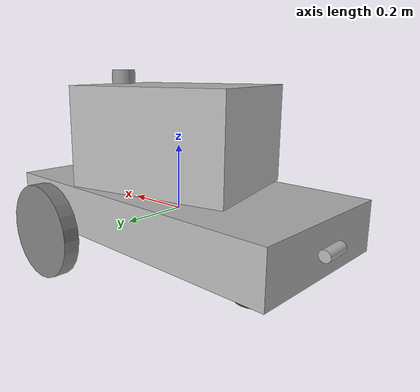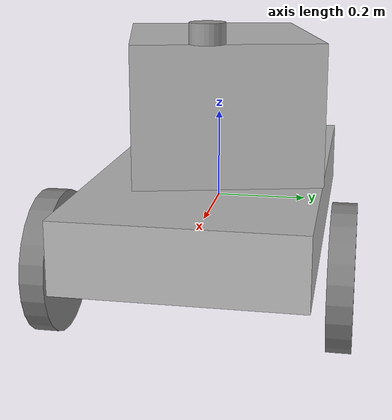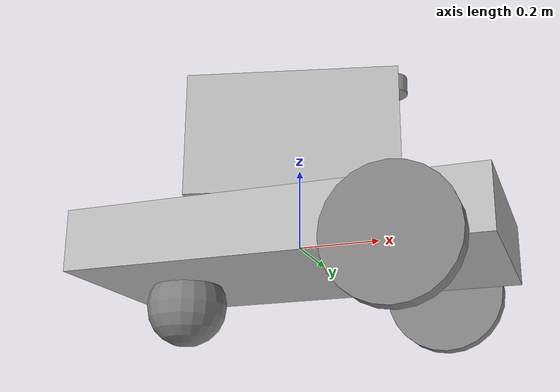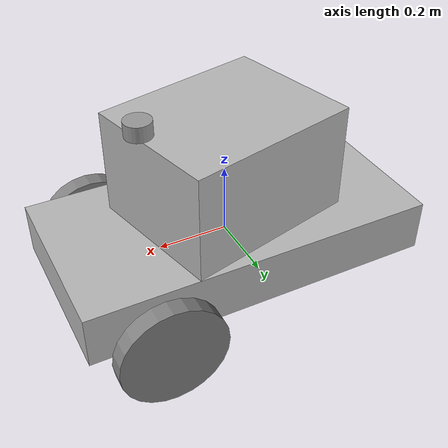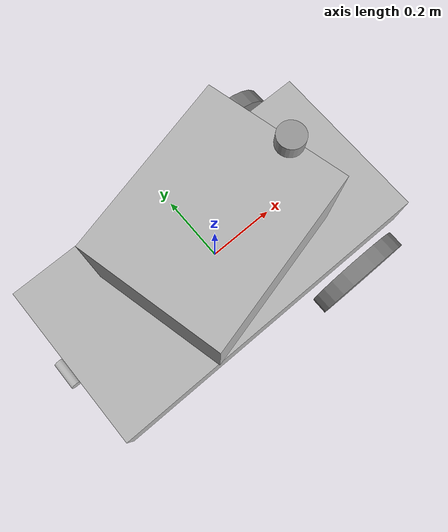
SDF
<?xml version='1.0'?>
<sdf version='1.7'>
  <model name='customized_dolly'>
    <link name='chassis'>
      <inertial>
        <mass>1</mass>
        <inertia>
          <ixx>0.0227</ixx>
          <ixy>0</ixy>
          <ixz>0</ixz>
          <iyy>0.0852</iyy>
          <iyz>0</iyz>
          <izz>0.1041</izz>
        </inertia>
        <pose>0 0 0 0 -0 0</pose>
      </inertial>
      <sensor name='sensor_ray' type='ray'>
        <pose>0.5 0 0 0 -0 0</pose>
        <ray>
          <scan>
            <horizontal>
              <samples>200</samples>
              <resolution>1</resolution>
              <min_angle>-1</min_angle>
              <max_angle>1</max_angle>
            </horizontal>
            <vertical>
              <samples>1</samples>
              <min_angle>0</min_angle>
              <max_angle>0</max_angle>
            </vertical>
          </scan>
          <range>
            <min>0.05</min>
            <max>10</max>
          </range>
        </ray>
        <always_on>1</always_on>
        <visualize>1</visualize>
        <update_rate>100</update_rate>
        <plugin name='laser' filename='libgazebo_ros_ray_sensor.so'>
          <ros>
            <namespace>/dolly</namespace>
            <remapping>~/out:=laser_scan</remapping>
          </ros>
          <output_type>sensor_msgs/LaserScan</output_type>
        </plugin>
      </sensor>
      <self_collide>0</self_collide>
      <enable_wind>0</enable_wind>
      <kinematic>0</kinematic>
      <pose>0 0 0 0 -0 0</pose>
      <visual name='visual'>
        <geometry>
          <box>
            <size>1 0.5 0.15</size>
          </box>
        </geometry>
        <material>
          <script>
            <uri>model://customized_dolly/materials/scripts</uri>
            <uri>model://customized_dolly/materials/textures</uri>
            <name>customized_dolly/iron</name>
          </script>
          <shader type='pixel'/>
        </material>
        <pose>0 0 0 0 -0 0</pose>
        <transparency>0</transparency>
        <cast_shadows>1</cast_shadows>
      </visual>
      <visual name='box'>
        <pose>0 0 0.08 0 -0 0.24</pose>
        <geometry>
          <mesh>
            <uri>model://cardboard_box/meshes/cardboard_box.dae</uri>
            <scale>1.25932 1.00745 0.755591</scale>
          </mesh>
        </geometry>
        <material>
          <shader type='pixel'/>
        </material>
        <transparency>0</transparency>
        <cast_shadows>1</cast_shadows>
      </visual>
    </link>
    <link name='camera_top'>
      <inertial>
        <mass>0.000244108</mass>
        <inertia>
          <ixx>1.2412e-07</ixx>
          <ixy>0</ixy>
          <ixz>0</ixz>
          <iyy>1.2412e-07</iyy>
          <iyz>0</iyz>
          <izz>1.7139e-07</izz>
        </inertia>
        <pose>0 0 1.5 0 -0 0</pose>
      </inertial>
      <pose>0.241018 0.015051 0.401714 -1.5e-05 0.006391 -0.00026</pose>
      <self_collide>0</self_collide>
      <enable_wind>0</enable_wind>
      <kinematic>0</kinematic>
      <visual name='visual'>
        <pose>0 0 0 0 -0 0</pose>
        <geometry>
          <cylinder>
            <radius>0.0374729</radius>
            <length>0.0434617</length>
          </cylinder>
        </geometry>
        <material>
          <lighting>1</lighting>
          <script>
            <uri>file://media/materials/scripts/gazebo.material</uri>
            <name>Gazebo/Grey</name>
          </script>
          <shader type='pixel'/>
        </material>
        <transparency>0</transparency>
        <cast_shadows>1</cast_shadows>
      </visual>
      <collision name='collision'>
        <laser_retro>0</laser_retro>
        <max_contacts>10</max_contacts>
        <pose>0 0 0 0 -0 0</pose>
        <geometry>
          <cylinder>
            <radius>0.037473</radius>
            <length>0.043462</length>
          </cylinder>
        </geometry>
        <surface>
          <friction>
            <ode>
              <mu>1</mu>
              <mu2>1</mu2>
              <fdir1>0 0 0</fdir1>
              <slip1>0</slip1>
              <slip2>0</slip2>
            </ode>
            <torsional>
              <coefficient>1</coefficient>
              <patch_radius>0</patch_radius>
              <surface_radius>0</surface_radius>
              <use_patch_radius>1</use_patch_radius>
              <ode>
                <slip>0</slip>
              </ode>
            </torsional>
          </friction>
          <bounce>
            <restitution_coefficient>0</restitution_coefficient>
            <threshold>1e+06</threshold>
          </bounce>
          <contact>
            <collide_without_contact>0</collide_without_contact>
            <collide_without_contact_bitmask>1</collide_without_contact_bitmask>
            <collide_bitmask>1</collide_bitmask>
            <ode>
              <soft_cfm>0</soft_cfm>
              <soft_erp>0.2</soft_erp>
              <kp>1e+13</kp>
              <kd>1</kd>
              <max_vel>0.01</max_vel>
              <min_depth>0</min_depth>
            </ode>
            <bullet>
              <split_impulse>1</split_impulse>
              <split_impulse_penetration_threshold>-0.01</split_impulse_penetration_threshold>
              <soft_cfm>0</soft_cfm>
              <soft_erp>0.2</soft_erp>
              <kp>1e+13</kp>
              <kd>1</kd>
            </bullet>
          </contact>
        </surface>
      </collision>
      <sensor name='camera0' type='camera'>
        <always_on>true</always_on>
        <update_rate>30</update_rate>
        <visualize>1</visualize>
        <camera name='head'>
          <horizontal_fov>1.39626</horizontal_fov>
          <image>
            <width>640</width>
            <height>480</height>
            <format>R8G8B8</format>
          </image>
          <clip>
            <near>0.02</near>
            <far>300</far>
          </clip>
          <noise>
            <type>gaussian</type>
            <mean>0</mean>
            <stddev>0.007</stddev>
          </noise>
        </camera>
        <plugin name='camera_controller' filename='libgazebo_ros_camera.so'>
          <ros>
            <remapping>image_raw:=image_raw</remapping>
            <remapping>camera_info:=camera_info_demo</remapping>
          </ros>
        </plugin>
      </sensor>
    </link>
    <link name='caster'>
      <pose>-0.3 0 -0.125 0 -0 0</pose>
      <inertial>
        <mass>0.0415553</mass>
        <inertia>
          <ixx>7.97741e-05</ixx>
          <ixy>0</ixy>
          <ixz>0</ixz>
          <iyy>7.97741e-05</iyy>
          <iyz>0</iyz>
          <izz>7.97741e-05</izz>
        </inertia>
        <pose>0 0 0 0 -0 0</pose>
      </inertial>
      <self_collide>0</self_collide>
      <enable_wind>0</enable_wind>
      <kinematic>0</kinematic>
      <visual name='visual'>
        <geometry>
          <sphere>
            <radius>0.1</radius>
          </sphere>
        </geometry>
        <material>
          <diffuse>0.5 0.5 0.5 1</diffuse>
          <ambient>0 0 0 1</ambient>
          <specular>1 1 1 1</specular>
          <emissive>0 0 0 1</emissive>
          <shader type='pixel'/>
          <script>
            <name>ModelPreview_2::caster::visual_MATERIAL_</name>
            <uri>__default__</uri>
          </script>
        </material>
        <pose>0 0 0 0 -0 0</pose>
        <transparency>0</transparency>
        <cast_shadows>1</cast_shadows>
      </visual>
      <collision name='collision'>
        <laser_retro>0</laser_retro>
        <max_contacts>10</max_contacts>
        <pose>0 0 0 0 -0 0</pose>
        <geometry>
          <sphere>
            <radius>0.1</radius>
          </sphere>
        </geometry>
        <surface>
          <friction>
            <ode>
              <mu>1</mu>
              <mu2>1</mu2>
              <fdir1>0 0 0</fdir1>
              <slip1>0</slip1>
              <slip2>0</slip2>
            </ode>
            <torsional>
              <coefficient>1</coefficient>
              <patch_radius>0</patch_radius>
              <surface_radius>0</surface_radius>
              <use_patch_radius>1</use_patch_radius>
              <ode>
                <slip>0</slip>
              </ode>
            </torsional>
          </friction>
          <bounce>
            <restitution_coefficient>0</restitution_coefficient>
            <threshold>1e+06</threshold>
          </bounce>
          <contact>
            <collide_without_contact>0</collide_without_contact>
            <collide_without_contact_bitmask>1</collide_without_contact_bitmask>
            <collide_bitmask>1</collide_bitmask>
            <ode>
              <soft_cfm>0</soft_cfm>
              <soft_erp>0.2</soft_erp>
              <kp>1e+13</kp>
              <kd>1</kd>
              <max_vel>0.01</max_vel>
              <min_depth>0</min_depth>
            </ode>
            <bullet>
              <split_impulse>1</split_impulse>
              <split_impulse_penetration_threshold>-0.01</split_impulse_penetration_threshold>
              <soft_cfm>0</soft_cfm>
              <soft_erp>0.2</soft_erp>
              <kp>1e+13</kp>
              <kd>1</kd>
            </bullet>
          </contact>
        </surface>
      </collision>
    </link>
    <link name='left_wheel'>
      <pose>0.3 0.3 -0.075 -1.5707 -0 -0</pose>
      <inertial>
        <mass>0.5</mass>
        <inertia>
          <ixx>0.0029</ixx>
          <ixy>0</ixy>
          <ixz>0</ixz>
          <iyy>0.0029</iyy>
          <iyz>0</iyz>
          <izz>0.0056</izz>
        </inertia>
        <pose>0 0 0 0 -0 0</pose>
      </inertial>
      <self_collide>0</self_collide>
      <enable_wind>0</enable_wind>
      <kinematic>0</kinematic>
      <visual name='visual'>
        <geometry>
          <cylinder>
            <radius>0.15</radius>
            <length>0.05</length>
          </cylinder>
        </geometry>
        <material>
          <diffuse>0.5 0.5 0.5 1</diffuse>
          <ambient>0 0 0 1</ambient>
          <specular>1 1 1 1</specular>
          <emissive>0 0 0 1</emissive>
          <shader type='pixel'/>
          <script>
            <name>ModelPreview_2::left_wheel::visual_MATERIAL_</name>
            <uri>__default__</uri>
          </script>
        </material>
        <pose>0 0 0 0 -0 0</pose>
        <transparency>0</transparency>
        <cast_shadows>1</cast_shadows>
      </visual>
      <collision name='collision'>
        <laser_retro>0</laser_retro>
        <max_contacts>10</max_contacts>
        <pose>0 0 0 0 -0 0</pose>
        <geometry>
          <sphere>
            <radius>0.15</radius>
          </sphere>
        </geometry>
        <surface>
          <friction>
            <ode>
              <mu>1</mu>
              <mu2>1</mu2>
              <fdir1>0 0 0</fdir1>
              <slip1>0</slip1>
              <slip2>0</slip2>
            </ode>
            <torsional>
              <coefficient>1</coefficient>
              <patch_radius>0</patch_radius>
              <surface_radius>0</surface_radius>
              <use_patch_radius>1</use_patch_radius>
              <ode>
                <slip>0</slip>
              </ode>
            </torsional>
          </friction>
          <bounce>
            <restitution_coefficient>0</restitution_coefficient>
            <threshold>1e+06</threshold>
          </bounce>
          <contact>
            <collide_without_contact>0</collide_without_contact>
            <collide_without_contact_bitmask>1</collide_without_contact_bitmask>
            <collide_bitmask>1</collide_bitmask>
            <ode>
              <soft_cfm>0</soft_cfm>
              <soft_erp>0.2</soft_erp>
              <kp>1e+13</kp>
              <kd>1</kd>
              <max_vel>0.01</max_vel>
              <min_depth>0.01</min_depth>
            </ode>
            <bullet>
              <split_impulse>1</split_impulse>
              <split_impulse_penetration_threshold>-0.01</split_impulse_penetration_threshold>
              <soft_cfm>0</soft_cfm>
              <soft_erp>0.2</soft_erp>
              <kp>1e+13</kp>
              <kd>1</kd>
            </bullet>
          </contact>
        </surface>
      </collision>
    </link>
    <link name='right_wheel'>
      <pose>0.3 -0.3 -0.075 -1.5707 -0 -0</pose>
      <inertial>
        <mass>0.5</mass>
        <inertia>
          <ixx>0.0029</ixx>
          <ixy>0</ixy>
          <ixz>0</ixz>
          <iyy>0.0029</iyy>
          <iyz>0</iyz>
          <izz>0.0056</izz>
        </inertia>
        <pose>0 0 0 0 -0 0</pose>
      </inertial>
      <self_collide>0</self_collide>
      <enable_wind>0</enable_wind>
      <kinematic>0</kinematic>
      <visual name='visual'>
        <geometry>
          <cylinder>
            <radius>0.15</radius>
            <length>0.05</length>
          </cylinder>
        </geometry>
        <material>
          <diffuse>0.5 0.5 0.5 1</diffuse>
          <ambient>0 0 0 1</ambient>
          <specular>1 1 1 1</specular>
          <emissive>0 0 0 1</emissive>
          <shader type='pixel'/>
          <script>
            <name>ModelPreview_2::right_wheel::visual_MATERIAL_</name>
            <uri>__default__</uri>
          </script>
        </material>
        <pose>0 0 0 0 -0 0</pose>
        <transparency>0</transparency>
        <cast_shadows>1</cast_shadows>
      </visual>
      <collision name='collision'>
        <laser_retro>0</laser_retro>
        <max_contacts>10</max_contacts>
        <pose>0 0 0 0 -0 0</pose>
        <geometry>
          <sphere>
            <radius>0.15</radius>
          </sphere>
        </geometry>
        <surface>
          <friction>
            <ode>
              <mu>1</mu>
              <mu2>1</mu2>
              <fdir1>0 0 0</fdir1>
              <slip1>0</slip1>
              <slip2>0</slip2>
            </ode>
            <torsional>
              <coefficient>1</coefficient>
              <patch_radius>0</patch_radius>
              <surface_radius>0</surface_radius>
              <use_patch_radius>1</use_patch_radius>
              <ode>
                <slip>0</slip>
              </ode>
            </torsional>
          </friction>
          <bounce>
            <restitution_coefficient>0</restitution_coefficient>
            <threshold>1e+06</threshold>
          </bounce>
          <contact>
            <collide_without_contact>0</collide_without_contact>
            <collide_without_contact_bitmask>1</collide_without_contact_bitmask>
            <collide_bitmask>1</collide_bitmask>
            <ode>
              <soft_cfm>0</soft_cfm>
              <soft_erp>0.2</soft_erp>
              <kp>1e+13</kp>
              <kd>1</kd>
              <max_vel>0.01</max_vel>
              <min_depth>0.01</min_depth>
            </ode>
            <bullet>
              <split_impulse>1</split_impulse>
              <split_impulse_penetration_threshold>-0.01</split_impulse_penetration_threshold>
              <soft_cfm>0</soft_cfm>
              <soft_erp>0.2</soft_erp>
              <kp>1e+13</kp>
              <kd>1</kd>
            </bullet>
          </contact>
        </surface>
      </collision>
    </link>
    <link name='tail'>
      <pose>-0.52 -0 -0 -1.6 0 0</pose>
      <inertial>
        <mass>0.0254232</mass>
        <inertia>
          <ixx>1.528e-05</ixx>
          <ixy>0</ixy>
          <ixz>0</ixz>
          <iyy>1.528e-05</iyy>
          <iyz>0</iyz>
          <izz>3.45e-06</izz>
        </inertia>
        <pose>0 0 -0.04 0 -0 0</pose>
      </inertial>
      <self_collide>0</self_collide>
      <enable_wind>0</enable_wind>
      <kinematic>0</kinematic>
      <visual name='visual'>
        <geometry>
          <cylinder>
            <radius>0.016468</radius>
            <length>0.08</length>
          </cylinder>
        </geometry>
        <material>
          <script>
            <uri>model://customized_dolly/materials/scripts</uri>
            <uri>model://customized_dolly/materials/textures</uri>
            <name>customized_dolly/iron</name>
          </script>
          <shader type='pixel'/>
        </material>
        <pose>0 0 0 0 -0 0</pose>
        <transparency>0</transparency>
        <cast_shadows>1</cast_shadows>
      </visual>
    </link>
    <joint name='camera_joint' type='fixed'>
      <parent>chassis</parent>
      <child>camera_top</child>
      <pose>0 0 0 0 -0 0</pose>
      <physics>
        <ode>
          <limit>
            <cfm>0</cfm>
            <erp>0.2</erp>
          </limit>
          <suspension>
            <cfm>0</cfm>
            <erp>0.2</erp>
          </suspension>
        </ode>
      </physics>
    </joint>
    <joint name='caster_wheel' type='ball'>
      <parent>chassis</parent>
      <child>caster</child>
      <pose>0 0 0 0 -0 0</pose>
      <physics>
        <ode>
          <limit>
            <cfm>0</cfm>
            <erp>0.2</erp>
          </limit>
          <suspension>
            <cfm>0</cfm>
            <erp>0.2</erp>
          </suspension>
        </ode>
      </physics>
    </joint>
    <joint name='left_wheel_joint' type='revolute'>
      <parent>chassis</parent>
      <child>left_wheel</child>
      <pose>0 0 0 0 -0 0</pose>
      <axis>
        <xyz>0 0 1</xyz>
        <limit>
          <lower>-1.79769e+308</lower>
          <upper>1.79769e+308</upper>
          <effort>-1</effort>
          <velocity>-1</velocity>
        </limit>
        <dynamics>
          <spring_reference>0</spring_reference>
          <spring_stiffness>0</spring_stiffness>
          <damping>0</damping>
          <friction>0</friction>
        </dynamics>
      </axis>
      <physics>
        <ode>
          <limit>
            <cfm>0</cfm>
            <erp>0.2</erp>
          </limit>
          <suspension>
            <cfm>0</cfm>
            <erp>0.2</erp>
          </suspension>
        </ode>
      </physics>
    </joint>
    <joint name='right_wheel_joint' type='revolute'>
      <parent>chassis</parent>
      <child>right_wheel</child>
      <pose>0 0 0 0 -0 0</pose>
      <axis>
        <xyz>0 0 1</xyz>
        <limit>
          <lower>-1.79769e+308</lower>
          <upper>1.79769e+308</upper>
          <effort>-1</effort>
          <velocity>-1</velocity>
        </limit>
        <dynamics>
          <spring_reference>0</spring_reference>
          <spring_stiffness>0</spring_stiffness>
          <damping>0</damping>
          <friction>0</friction>
        </dynamics>
      </axis>
      <physics>
        <ode>
          <limit>
            <cfm>0</cfm>
            <erp>0.2</erp>
          </limit>
          <suspension>
            <cfm>0</cfm>
            <erp>0.2</erp>
          </suspension>
        </ode>
      </physics>
    </joint>
    <joint name='tail_joint' type='revolute'>
      <parent>chassis</parent>
      <child>tail</child>
      <pose>0 0 0.04 0 -0 0</pose>
      <axis>
        <xyz>1 0 0</xyz>
        <limit>
          <lower>-1.79769e+308</lower>
          <upper>1.79769e+308</upper>
          <effort>-1</effort>
          <velocity>-1</velocity>
        </limit>
        <dynamics>
          <spring_reference>0</spring_reference>
          <spring_stiffness>0</spring_stiffness>
          <damping>0</damping>
          <friction>0</friction>
        </dynamics>
      </axis>
      <physics>
        <ode>
          <limit>
            <cfm>0</cfm>
            <erp>0.2</erp>
          </limit>
          <suspension>
            <cfm>0</cfm>
            <erp>0.2</erp>
          </suspension>
        </ode>
      </physics>
    </joint>
    <static>0</static>
    <allow_auto_disable>1</allow_auto_disable>
    <plugin name='diff_drive' filename='libgazebo_ros_diff_drive.so'>
      <ros>
        <namespace>/dolly</namespace>
      </ros>
      <left_joint>left_wheel_joint</left_joint>
      <right_joint>right_wheel_joint</right_joint>
      <wheel_separation>1.25</wheel_separation>
      <wheel_diameter>0.3</wheel_diameter>
      <max_wheel_torque>20</max_wheel_torque>
      <max_wheel_acceleration>1.0</max_wheel_acceleration>
      <publish_odom>1</publish_odom>
      <publish_odom_tf>1</publish_odom_tf>
      <odometry_frame>odom_demo</odometry_frame>
      <robot_base_frame>chassis</robot_base_frame>
    </plugin>
  </model>
</sdf>
